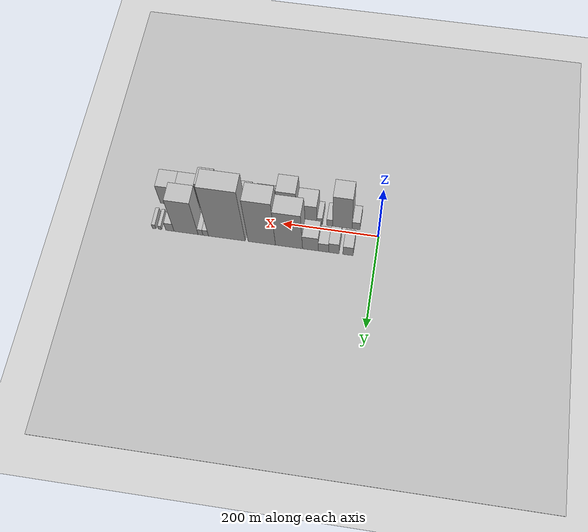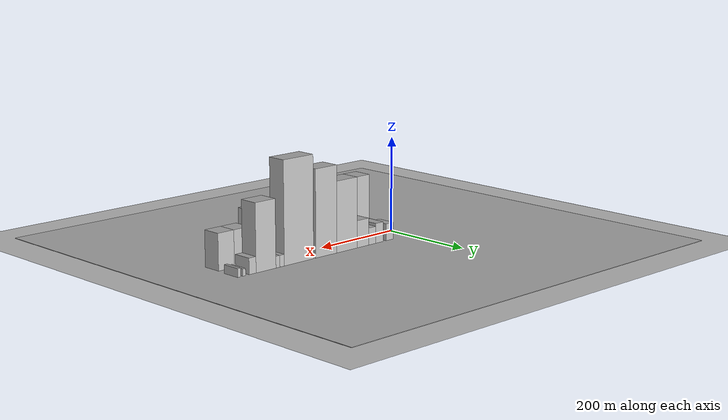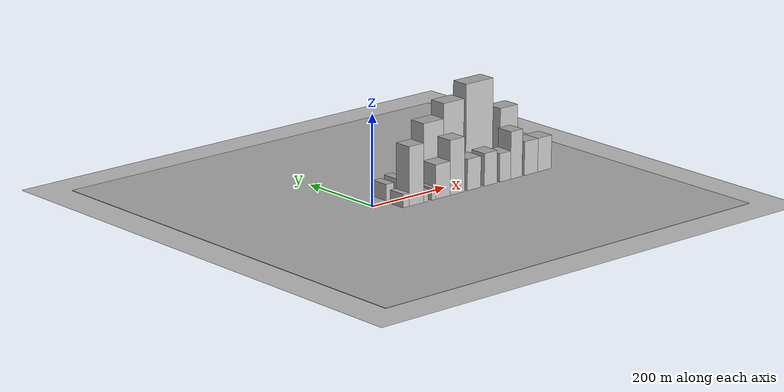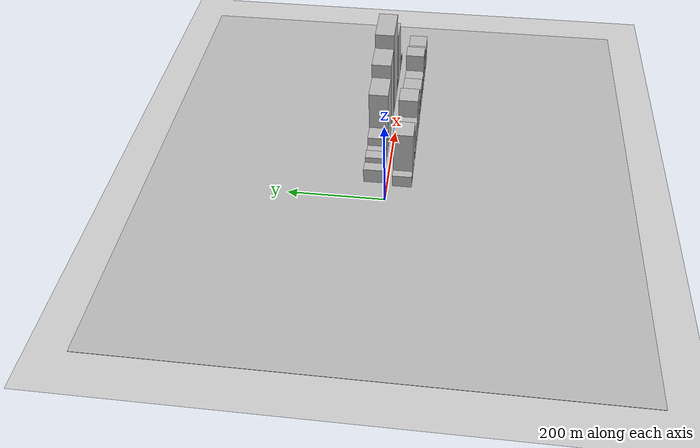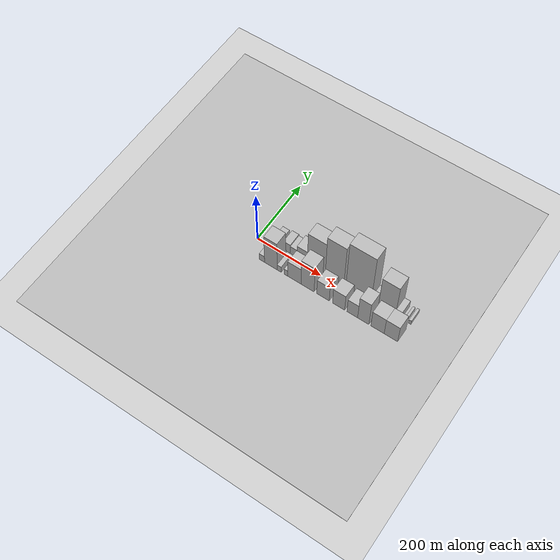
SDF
<?xml version="1.0" encoding="utf-8"?>

<sdf version="1.6">

   <world name="default">

      <gui fullscreen="0">

         <camera name="user_camera">

            <pose>-15 0 4.57585 0 0 0</pose>

            <view_controller>orbit</view_controller>

         </camera>

      </gui>

      <scene>

         <sky>

           <clouds>

             <speed>12</speed>

           </clouds>

         </sky>

         <ambient>0.4 0.4 0.4 1</ambient>

         <background>0.7 0.7 0.7 1</background>

         <shadows>1</shadows>

      </scene>

      <gravity>0 0 -9.8066</gravity>

      <magnetic_field>6e-06 2.3e-05 -4.2e-05</magnetic_field>

      <physics default="0" name="default_physics" type="ode">

         <ode>

            <solver>

               <type>quick</type>

               <iters>10</iters>

               <sor>1.0</sor>

               <use_dynamic_moi_rescaling>0</use_dynamic_moi_rescaling>

            </solver>

            <constraints>

               <cfm>0</cfm>

               <erp>0.2</erp>

               <contact_max_correcting_vel>100</contact_max_correcting_vel>

               <contact_surface_layer>0.001</contact_surface_layer>

            </constraints>

         </ode>

         <max_step_size>0.004</max_step_size>

         <real_time_factor>1</real_time_factor>

         <real_time_update_rate>250</real_time_update_rate>

      </physics>

      <light name="sun" type="directional">

         <cast_shadows>1</cast_shadows>

         <pose>0 0 10 0 0 0</pose>

         <diffuse>0.8 0.8 0.8 1</diffuse>

         <specular>0.2 0.2 0.2 1</specular>

         <attenuation>

            <range>1000</range>

            <constant>0.9</constant>

            <linear>0.01</linear>

            <quadratic>0.001</quadratic>

         </attenuation>

         <direction>-0.5 0.1 -0.9</direction>

      </light>

      <include>

         <name>ground_plane_1</name>

         <uri>model://HANNAS_ground_plane</uri>

         <pose>0 0 0  0 0 0</pose>

      </include>

      <include>

         <name>ground_plane_2</name>

         <uri>model://HANNAS_ground_plane</uri>

         <pose>100 0 0  0 0 0</pose>

      </include>

      <model name="building_1">

         <static>1</static>

         <pose frame="">56.5147 30.0000 0 0.000000 0.000000 1.570796</pose>

         <link name="link">

            <pose frame="">0 0 18.00 0 0 0</pose>

            <collision name="collision">

               <geometry>

                  <box>

                     <size>40.0000 21.0294 36.0000</size>

                  </box>

               </geometry>

               <max_contacts>10</max_contacts>

               <surface>

                  <contact>

                     <ode/>

                  </contact>

                  <bounce/>

                  <friction>

                     <torsional>

                        <ode/>

                     </torsional>

                     <ode/>

                  </friction>

               </surface>

            </collision>

            <visual name="visual">

               <cast_shadows>0</cast_shadows>

               <geometry>

                  <box>

                     <size>40.0000 21.0294 36.0000</size>

                  </box>

               </geometry>

               <material>

                  <script>

                     <uri>model://HANNAS_wall/materials/scripts</uri>

                     <uri>model://HANNAS_wall/materials/textures</uri>

                     <name>vrc/HANNAS_wall</name>

                  </script>

               </material>

            </visual>

            <self_collide>0</self_collide>

            <enable_wind>0</enable_wind>

            <kinematic>0</kinematic>

         </link>

      </model>

      <model name="building_2">

         <static>1</static>

         <pose frame="">85.8096 30.0000 0 0.000000 0.000000 1.570796</pose>

         <link name="link">

            <pose frame="">0 0 21.00 0 0 0</pose>

            <collision name="collision">

               <geometry>

                  <box>

                     <size>40.0000 21.5605 42.0000</size>

                  </box>

               </geometry>

               <max_contacts>10</max_contacts>

               <surface>

                  <contact>

                     <ode/>

                  </contact>

                  <bounce/>

                  <friction>

                     <torsional>

                        <ode/>

                     </torsional>

                     <ode/>

                  </friction>

               </surface>

            </collision>

            <visual name="visual">

               <cast_shadows>0</cast_shadows>

               <geometry>

                  <box>

                     <size>40.0000 21.5605 42.0000</size>

                  </box>

               </geometry>

               <material>

                  <script>

                     <uri>model://HANNAS_wall/materials/scripts</uri>

                     <uri>model://HANNAS_wall/materials/textures</uri>

                     <name>vrc/HANNAS_wall</name>

                  </script>

               </material>

            </visual>

            <self_collide>0</self_collide>

            <enable_wind>0</enable_wind>

            <kinematic>0</kinematic>

         </link>

      </model>

      <model name="building_3">

         <static>1</static>

         <pose frame="">107.0589 30.0000 0 0.000000 0.000000 1.570796</pose>

         <link name="link">

            <pose frame="">0 0 18.00 0 0 0</pose>

            <collision name="collision">

               <geometry>

                  <box>

                     <size>40.0000 20.9381 36.0000</size>

                  </box>

               </geometry>

               <max_contacts>10</max_contacts>

               <surface>

                  <contact>

                     <ode/>

                  </contact>

                  <bounce/>

                  <friction>

                     <torsional>

                        <ode/>

                     </torsional>

                     <ode/>

                  </friction>

               </surface>

            </collision>

            <visual name="visual">

               <cast_shadows>0</cast_shadows>

               <geometry>

                  <box>

                     <size>40.0000 20.9381 36.0000</size>

                  </box>

               </geometry>

               <material>

                  <script>

                     <uri>model://HANNAS_wall/materials/scripts</uri>

                     <uri>model://HANNAS_wall/materials/textures</uri>

                     <name>vrc/HANNAS_wall</name>

                  </script>

               </material>

            </visual>

            <self_collide>0</self_collide>

            <enable_wind>0</enable_wind>

            <kinematic>0</kinematic>

         </link>

      </model>

      <model name="building_4">

         <static>1</static>

         <pose frame="">133.8735 30.0000 0 0.000000 0.000000 1.570796</pose>

         <link name="link">

            <pose frame="">0 0 28.50 0 0 0</pose>

            <collision name="collision">

               <geometry>

                  <box>

                     <size>40.0000 32.6911 57.0000</size>

                  </box>

               </geometry>

               <max_contacts>10</max_contacts>

               <surface>

                  <contact>

                     <ode/>

                  </contact>

                  <bounce/>

                  <friction>

                     <torsional>

                        <ode/>

                     </torsional>

                     <ode/>

                  </friction>

               </surface>

            </collision>

            <visual name="visual">

               <cast_shadows>0</cast_shadows>

               <geometry>

                  <box>

                     <size>40.0000 32.6911 57.0000</size>

                  </box>

               </geometry>

               <material>

                  <script>

                     <uri>model://HANNAS_wall/materials/scripts</uri>

                     <uri>model://HANNAS_wall/materials/textures</uri>

                     <name>vrc/HANNAS_wall</name>

                  </script>

               </material>

            </visual>

            <self_collide>0</self_collide>

            <enable_wind>0</enable_wind>

            <kinematic>0</kinematic>

         </link>

      </model>

      <model name="building_5">

         <static>1</static>

         <pose frame="">178.2053 30.0000 0 0.000000 0.000000 1.570796</pose>

         <link name="link">

            <pose frame="">0 0 73.50 0 0 0</pose>

            <collision name="collision">

               <geometry>

                  <box>

                     <size>40.0000 55.9724 147.0000</size>

                  </box>

               </geometry>

               <max_contacts>10</max_contacts>

               <surface>

                  <contact>

                     <ode/>

                  </contact>

                  <bounce/>

                  <friction>

                     <torsional>

                        <ode/>

                     </torsional>

                     <ode/>

                  </friction>

               </surface>

            </collision>

            <visual name="visual">

               <cast_shadows>0</cast_shadows>

               <geometry>

                  <box>

                     <size>40.0000 55.9724 147.0000</size>

                  </box>

               </geometry>

               <material>

                  <script>

                     <uri>model://HANNAS_wall/materials/scripts</uri>

                     <uri>model://HANNAS_wall/materials/textures</uri>

                     <name>vrc/HANNAS_wall</name>

                  </script>

               </material>

            </visual>

            <self_collide>0</self_collide>

            <enable_wind>0</enable_wind>

            <kinematic>0</kinematic>

         </link>

      </model>

      <model name="building_6">

         <static>1</static>

         <pose frame="">234.6536 30.0000 0 0.000000 0.000000 1.570796</pose>

         <link name="link">

            <pose frame="">0 0 90.00 0 0 0</pose>

            <collision name="collision">

               <geometry>

                  <box>

                     <size>40.0000 56.9243 180.0000</size>

                  </box>

               </geometry>

               <max_contacts>10</max_contacts>

               <surface>

                  <contact>

                     <ode/>

                  </contact>

                  <bounce/>

                  <friction>

                     <torsional>

                        <ode/>

                     </torsional>

                     <ode/>

                  </friction>

               </surface>

            </collision>

            <visual name="visual">

               <cast_shadows>0</cast_shadows>

               <geometry>

                  <box>

                     <size>40.0000 56.9243 180.0000</size>

                  </box>

               </geometry>

               <material>

                  <script>

                     <uri>model://HANNAS_wall/materials/scripts</uri>

                     <uri>model://HANNAS_wall/materials/textures</uri>

                     <name>vrc/HANNAS_wall</name>

                  </script>

               </material>

            </visual>

            <self_collide>0</self_collide>

            <enable_wind>0</enable_wind>

            <kinematic>0</kinematic>

         </link>

      </model>

      <model name="building_7">

         <static>1</static>

         <pose frame="">307.6119 30.0000 0 0.000000 0.000000 1.570796</pose>

         <link name="link">

            <pose frame="">0 0 105.00 0 0 0</pose>

            <collision name="collision">

               <geometry>

                  <box>

                     <size>40.0000 76.9921 210.0000</size>

                  </box>

               </geometry>

               <max_contacts>10</max_contacts>

               <surface>

                  <contact>

                     <ode/>

                  </contact>

                  <bounce/>

                  <friction>

                     <torsional>

                        <ode/>

                     </torsional>

                     <ode/>

                  </friction>

               </surface>

            </collision>

            <visual name="visual">

               <cast_shadows>0</cast_shadows>

               <geometry>

                  <box>

                     <size>40.0000 76.9921 210.0000</size>

                  </box>

               </geometry>

               <material>

                  <script>

                     <uri>model://HANNAS_wall/materials/scripts</uri>

                     <uri>model://HANNAS_wall/materials/textures</uri>

                     <name>vrc/HANNAS_wall</name>

                  </script>

               </material>

            </visual>

            <self_collide>0</self_collide>

            <enable_wind>0</enable_wind>

            <kinematic>0</kinematic>

         </link>

      </model>

      <model name="building_8">

         <static>1</static>

         <pose frame="">351.8058 30.0000 0 0.000000 0.000000 1.570796</pose>

         <link name="link">

            <pose frame="">0 0 12.00 0 0 0</pose>

            <collision name="collision">

               <geometry>

                  <box>

                     <size>40.0000 11.3957 24.0000</size>

                  </box>

               </geometry>

               <max_contacts>10</max_contacts>

               <surface>

                  <contact>

                     <ode/>

                  </contact>

                  <bounce/>

                  <friction>

                     <torsional>

                        <ode/>

                     </torsional>

                     <ode/>

                  </friction>

               </surface>

            </collision>

            <visual name="visual">

               <cast_shadows>0</cast_shadows>

               <geometry>

                  <box>

                     <size>40.0000 11.3957 24.0000</size>

                  </box>

               </geometry>

               <material>

                  <script>

                     <uri>model://HANNAS_wall/materials/scripts</uri>

                     <uri>model://HANNAS_wall/materials/textures</uri>

                     <name>vrc/HANNAS_wall</name>

                  </script>

               </material>

            </visual>

            <self_collide>0</self_collide>

            <enable_wind>0</enable_wind>

            <kinematic>0</kinematic>

         </link>

      </model>

      <model name="building_9">

         <static>1</static>

         <pose frame="">362.6047 30.0000 0 0.000000 0.000000 1.570796</pose>

         <link name="link">

            <pose frame="">0 0 12.00 0 0 0</pose>

            <collision name="collision">

               <geometry>

                  <box>

                     <size>40.0000 10.2021 24.0000</size>

                  </box>

               </geometry>

               <max_contacts>10</max_contacts>

               <surface>

                  <contact>

                     <ode/>

                  </contact>

                  <bounce/>

                  <friction>

                     <torsional>

                        <ode/>

                     </torsional>

                     <ode/>

                  </friction>

               </surface>

            </collision>

            <visual name="visual">

               <cast_shadows>0</cast_shadows>

               <geometry>

                  <box>

                     <size>40.0000 10.2021 24.0000</size>

                  </box>

               </geometry>

               <material>

                  <script>

                     <uri>model://HANNAS_wall/materials/scripts</uri>

                     <uri>model://HANNAS_wall/materials/textures</uri>

                     <name>vrc/HANNAS_wall</name>

                  </script>

               </material>

            </visual>

            <self_collide>0</self_collide>

            <enable_wind>0</enable_wind>

            <kinematic>0</kinematic>

         </link>

      </model>

      <model name="building_10">

         <static>1</static>

         <pose frame="">392.9065 30.0000 0 0.000000 0.000000 1.570796</pose>

         <link name="link">

            <pose frame="">0 0 69.00 0 0 0</pose>

            <collision name="collision">

               <geometry>

                  <box>

                     <size>40.0000 50.4016 138.0000</size>

                  </box>

               </geometry>

               <max_contacts>10</max_contacts>

               <surface>

                  <contact>

                     <ode/>

                  </contact>

                  <bounce/>

                  <friction>

                     <torsional>

                        <ode/>

                     </torsional>

                     <ode/>

                  </friction>

               </surface>

            </collision>

            <visual name="visual">

               <cast_shadows>0</cast_shadows>

               <geometry>

                  <box>

                     <size>40.0000 50.4016 138.0000</size>

                  </box>

               </geometry>

               <material>

                  <script>

                     <uri>model://HANNAS_wall/materials/scripts</uri>

                     <uri>model://HANNAS_wall/materials/textures</uri>

                     <name>vrc/HANNAS_wall</name>

                  </script>

               </material>

            </visual>

            <self_collide>0</self_collide>

            <enable_wind>0</enable_wind>

            <kinematic>0</kinematic>

         </link>

      </model>

      <model name="building_11">

         <static>1</static>

         <pose frame="">426.7746 30.0000 0 0.000000 0.000000 1.570796</pose>

         <link name="link">

            <pose frame="">0 0 16.50 0 0 0</pose>

            <collision name="collision">

               <geometry>

                  <box>

                     <size>40.0000 17.3346 33.0000</size>

                  </box>

               </geometry>

               <max_contacts>10</max_contacts>

               <surface>

                  <contact>

                     <ode/>

                  </contact>

                  <bounce/>

                  <friction>

                     <torsional>

                        <ode/>

                     </torsional>

                     <ode/>

                  </friction>

               </surface>

            </collision>

            <visual name="visual">

               <cast_shadows>0</cast_shadows>

               <geometry>

                  <box>

                     <size>40.0000 17.3346 33.0000</size>

                  </box>

               </geometry>

               <material>

                  <script>

                     <uri>model://HANNAS_wall/materials/scripts</uri>

                     <uri>model://HANNAS_wall/materials/textures</uri>

                     <name>vrc/HANNAS_wall</name>

                  </script>

               </material>

            </visual>

            <self_collide>0</self_collide>

            <enable_wind>0</enable_wind>

            <kinematic>0</kinematic>

         </link>

      </model>

      <model name="building_12">

         <static>1</static>

         <pose frame="">447.8353 30.0000 0 0.000000 0.000000 1.570796</pose>

         <link name="link">

            <pose frame="">0 0 7.50 0 0 0</pose>

            <collision name="collision">

               <geometry>

                  <box>

                     <size>40.0000 6.7868 15.0000</size>

                  </box>

               </geometry>

               <max_contacts>10</max_contacts>

               <surface>

                  <contact>

                     <ode/>

                  </contact>

                  <bounce/>

                  <friction>

                     <torsional>

                        <ode/>

                     </torsional>

                     <ode/>

                  </friction>

               </surface>

            </collision>

            <visual name="visual">

               <cast_shadows>0</cast_shadows>

               <geometry>

                  <box>

                     <size>40.0000 6.7868 15.0000</size>

                  </box>

               </geometry>

               <material>

                  <script>

                     <uri>model://HANNAS_wall/materials/scripts</uri>

                     <uri>model://HANNAS_wall/materials/textures</uri>

                     <name>vrc/HANNAS_wall</name>

                  </script>

               </material>

            </visual>

            <self_collide>0</self_collide>

            <enable_wind>0</enable_wind>

            <kinematic>0</kinematic>

         </link>

      </model>

      <model name="building_13">

         <static>1</static>

         <pose frame="">459.9971 30.0000 0 0.000000 0.000000 1.570796</pose>

         <link name="link">

            <pose frame="">0 0 9.00 0 0 0</pose>

            <collision name="collision">

               <geometry>

                  <box>

                     <size>40.0000 7.5367 18.0000</size>

                  </box>

               </geometry>

               <max_contacts>10</max_contacts>

               <surface>

                  <contact>

                     <ode/>

                  </contact>

                  <bounce/>

                  <friction>

                     <torsional>

                        <ode/>

                     </torsional>

                     <ode/>

                  </friction>

               </surface>

            </collision>

            <visual name="visual">

               <cast_shadows>0</cast_shadows>

               <geometry>

                  <box>

                     <size>40.0000 7.5367 18.0000</size>

                  </box>

               </geometry>

               <material>

                  <script>

                     <uri>model://HANNAS_wall/materials/scripts</uri>

                     <uri>model://HANNAS_wall/materials/textures</uri>

                     <name>vrc/HANNAS_wall</name>

                  </script>

               </material>

            </visual>

            <self_collide>0</self_collide>

            <enable_wind>0</enable_wind>

            <kinematic>0</kinematic>

         </link>

      </model>

      <model name="building_14">

         <static>1</static>

         <pose frame="">48.2404 -30.0000 0 0.000000 0.000000 1.570796</pose>

         <link name="link">

            <pose frame="">0 0 15.00 0 0 0</pose>

            <collision name="collision">

               <geometry>

                  <box>

                     <size>40.0000 16.4807 30.0000</size>

                  </box>

               </geometry>

               <max_contacts>10</max_contacts>

               <surface>

                  <contact>

                     <ode/>

                  </contact>

                  <bounce/>

                  <friction>

                     <torsional>

                        <ode/>

                     </torsional>

                     <ode/>

                  </friction>

               </surface>

            </collision>

            <visual name="visual">

               <cast_shadows>0</cast_shadows>

               <geometry>

                  <box>

                     <size>40.0000 16.4807 30.0000</size>

                  </box>

               </geometry>

               <material>

                  <script>

                     <uri>model://HANNAS_wall/materials/scripts</uri>

                     <uri>model://HANNAS_wall/materials/textures</uri>

                     <name>vrc/HANNAS_wall</name>

                  </script>

               </material>

            </visual>

            <self_collide>0</self_collide>

            <enable_wind>0</enable_wind>

            <kinematic>0</kinematic>

         </link>

      </model>

      <model name="building_15">

         <static>1</static>

         <pose frame="">76.5183 -30.0000 0 0.000000 0.000000 1.570796</pose>

         <link name="link">

            <pose frame="">0 0 64.50 0 0 0</pose>

            <collision name="collision">

               <geometry>

                  <box>

                     <size>40.0000 40.0751 129.0000</size>

                  </box>

               </geometry>

               <max_contacts>10</max_contacts>

               <surface>

                  <contact>

                     <ode/>

                  </contact>

                  <bounce/>

                  <friction>

                     <torsional>

                        <ode/>

                     </torsional>

                     <ode/>

                  </friction>

               </surface>

            </collision>

            <visual name="visual">

               <cast_shadows>0</cast_shadows>

               <geometry>

                  <box>

                     <size>40.0000 40.0751 129.0000</size>

                  </box>

               </geometry>

               <material>

                  <script>

                     <uri>model://HANNAS_wall/materials/scripts</uri>

                     <uri>model://HANNAS_wall/materials/textures</uri>

                     <name>vrc/HANNAS_wall</name>

                  </script>

               </material>

            </visual>

            <self_collide>0</self_collide>

            <enable_wind>0</enable_wind>

            <kinematic>0</kinematic>

         </link>

      </model>

      <model name="building_16">

         <static>1</static>

         <pose frame="">102.9576 -30.0000 0 0.000000 0.000000 1.570796</pose>

         <link name="link">

            <pose frame="">0 0 13.50 0 0 0</pose>

            <collision name="collision">

               <geometry>

                  <box>

                     <size>40.0000 12.8036 27.0000</size>

                  </box>

               </geometry>

               <max_contacts>10</max_contacts>

               <surface>

                  <contact>

                     <ode/>

                  </contact>

                  <bounce/>

                  <friction>

                     <torsional>

                        <ode/>

                     </torsional>

                     <ode/>

                  </friction>

               </surface>

            </collision>

            <visual name="visual">

               <cast_shadows>0</cast_shadows>

               <geometry>

                  <box>

                     <size>40.0000 12.8036 27.0000</size>

                  </box>

               </geometry>

               <material>

                  <script>

                     <uri>model://HANNAS_wall/materials/scripts</uri>

                     <uri>model://HANNAS_wall/materials/textures</uri>

                     <name>vrc/HANNAS_wall</name>

                  </script>

               </material>

            </visual>

            <self_collide>0</self_collide>

            <enable_wind>0</enable_wind>

            <kinematic>0</kinematic>

         </link>

      </model>

      <model name="building_17">

         <static>1</static>

         <pose frame="">123.9845 -30.0000 0 0.000000 0.000000 1.570796</pose>

         <link name="link">

            <pose frame="">0 0 13.50 0 0 0</pose>

            <collision name="collision">

               <geometry>

                  <box>

                     <size>40.0000 11.2503 27.0000</size>

                  </box>

               </geometry>

               <max_contacts>10</max_contacts>

               <surface>

                  <contact>

                     <ode/>

                  </contact>

                  <bounce/>

                  <friction>

                     <torsional>

                        <ode/>

                     </torsional>

                     <ode/>

                  </friction>

               </surface>

            </collision>

            <visual name="visual">

               <cast_shadows>0</cast_shadows>

               <geometry>

                  <box>

                     <size>40.0000 11.2503 27.0000</size>

                  </box>

               </geometry>

               <material>

                  <script>

                     <uri>model://HANNAS_wall/materials/scripts</uri>

                     <uri>model://HANNAS_wall/materials/textures</uri>

                     <name>vrc/HANNAS_wall</name>

                  </script>

               </material>

            </visual>

            <self_collide>0</self_collide>

            <enable_wind>0</enable_wind>

            <kinematic>0</kinematic>

         </link>

      </model>

      <model name="building_18">

         <static>1</static>

         <pose frame="">150.2553 -30.0000 0 0.000000 0.000000 1.570796</pose>

         <link name="link">

            <pose frame="">0 0 37.50 0 0 0</pose>

            <collision name="collision">

               <geometry>

                  <box>

                     <size>40.0000 41.2912 75.0000</size>

                  </box>

               </geometry>

               <max_contacts>10</max_contacts>

               <surface>

                  <contact>

                     <ode/>

                  </contact>

                  <bounce/>

                  <friction>

                     <torsional>

                        <ode/>

                     </torsional>

                     <ode/>

                  </friction>

               </surface>

            </collision>

            <visual name="visual">

               <cast_shadows>0</cast_shadows>

               <geometry>

                  <box>

                     <size>40.0000 41.2912 75.0000</size>

                  </box>

               </geometry>

               <material>

                  <script>

                     <uri>model://HANNAS_wall/materials/scripts</uri>

                     <uri>model://HANNAS_wall/materials/textures</uri>

                     <name>vrc/HANNAS_wall</name>

                  </script>

               </material>

            </visual>

            <self_collide>0</self_collide>

            <enable_wind>0</enable_wind>

            <kinematic>0</kinematic>

         </link>

      </model>

      <model name="building_19">

         <static>1</static>

         <pose frame="">191.0129 -30.0000 0 0.000000 0.000000 1.570796</pose>

         <link name="link">

            <pose frame="">0 0 60.00 0 0 0</pose>

            <collision name="collision">

               <geometry>

                  <box>

                     <size>40.0000 40.2239 120.0000</size>

                  </box>

               </geometry>

               <max_contacts>10</max_contacts>

               <surface>

                  <contact>

                     <ode/>

                  </contact>

                  <bounce/>

                  <friction>

                     <torsional>

                        <ode/>

                     </torsional>

                     <ode/>

                  </friction>

               </surface>

            </collision>

            <visual name="visual">

               <cast_shadows>0</cast_shadows>

               <geometry>

                  <box>

                     <size>40.0000 40.2239 120.0000</size>

                  </box>

               </geometry>

               <material>

                  <script>

                     <uri>model://HANNAS_wall/materials/scripts</uri>

                     <uri>model://HANNAS_wall/materials/textures</uri>

                     <name>vrc/HANNAS_wall</name>

                  </script>

               </material>

            </visual>

            <self_collide>0</self_collide>

            <enable_wind>0</enable_wind>

            <kinematic>0</kinematic>

         </link>

      </model>

      <model name="building_20">

         <static>1</static>

         <pose frame="">238.2683 -30.0000 0 0.000000 0.000000 1.570796</pose>

         <link name="link">

            <pose frame="">0 0 34.50 0 0 0</pose>

            <collision name="collision">

               <geometry>

                  <box>

                     <size>40.0000 38.2868 69.0000</size>

                  </box>

               </geometry>

               <max_contacts>10</max_contacts>

               <surface>

                  <contact>

                     <ode/>

                  </contact>

                  <bounce/>

                  <friction>

                     <torsional>

                        <ode/>

                     </torsional>

                     <ode/>

                  </friction>

               </surface>

            </collision>

            <visual name="visual">

               <cast_shadows>0</cast_shadows>

               <geometry>

                  <box>

                     <size>40.0000 38.2868 69.0000</size>

                  </box>

               </geometry>

               <material>

                  <script>

                     <uri>model://HANNAS_wall/materials/scripts</uri>

                     <uri>model://HANNAS_wall/materials/textures</uri>

                     <name>vrc/HANNAS_wall</name>

                  </script>

               </material>

            </visual>

            <self_collide>0</self_collide>

            <enable_wind>0</enable_wind>

            <kinematic>0</kinematic>

         </link>

      </model>

      <model name="building_21">

         <static>1</static>

         <pose frame="">285.7348 -30.0000 0 0.000000 0.000000 1.570796</pose>

         <link name="link">

            <pose frame="">0 0 36.00 0 0 0</pose>

            <collision name="collision">

               <geometry>

                  <box>

                     <size>40.0000 36.6463 72.0000</size>

                  </box>

               </geometry>

               <max_contacts>10</max_contacts>

               <surface>

                  <contact>

                     <ode/>

                  </contact>

                  <bounce/>

                  <friction>

                     <torsional>

                        <ode/>

                     </torsional>

                     <ode/>

                  </friction>

               </surface>

            </collision>

            <visual name="visual">

               <cast_shadows>0</cast_shadows>

               <geometry>

                  <box>

                     <size>40.0000 36.6463 72.0000</size>

                  </box>

               </geometry>

               <material>

                  <script>

                     <uri>model://HANNAS_wall/materials/scripts</uri>

                     <uri>model://HANNAS_wall/materials/textures</uri>

                     <name>vrc/HANNAS_wall</name>

                  </script>

               </material>

            </visual>

            <self_collide>0</self_collide>

            <enable_wind>0</enable_wind>

            <kinematic>0</kinematic>

         </link>

      </model>

      <model name="building_22">

         <static>1</static>

         <pose frame="">326.9883 -30.0000 0 0.000000 0.000000 1.570796</pose>

         <link name="link">

            <pose frame="">0 0 31.50 0 0 0</pose>

            <collision name="collision">

               <geometry>

                  <box>

                     <size>40.0000 31.8606 63.0000</size>

                  </box>

               </geometry>

               <max_contacts>10</max_contacts>

               <surface>

                  <contact>

                     <ode/>

                  </contact>

                  <bounce/>

                  <friction>

                     <torsional>

                        <ode/>

                     </torsional>

                     <ode/>

                  </friction>

               </surface>

            </collision>

            <visual name="visual">

               <cast_shadows>0</cast_shadows>

               <geometry>

                  <box>

                     <size>40.0000 31.8606 63.0000</size>

                  </box>

               </geometry>

               <material>

                  <script>

                     <uri>model://HANNAS_wall/materials/scripts</uri>

                     <uri>model://HANNAS_wall/materials/textures</uri>

                     <name>vrc/HANNAS_wall</name>

                  </script>

               </material>

            </visual>

            <self_collide>0</self_collide>

            <enable_wind>0</enable_wind>

            <kinematic>0</kinematic>

         </link>

      </model>

      <model name="building_23">

         <static>1</static>

         <pose frame="">359.6305 -30.0000 0 0.000000 0.000000 1.570796</pose>

         <link name="link">

            <pose frame="">0 0 52.50 0 0 0</pose>

            <collision name="collision">

               <geometry>

                  <box>

                     <size>40.0000 33.4239 105.0000</size>

                  </box>

               </geometry>

               <max_contacts>10</max_contacts>

               <surface>

                  <contact>

                     <ode/>

                  </contact>

                  <bounce/>

                  <friction>

                     <torsional>

                        <ode/>

                     </torsional>

                     <ode/>

                  </friction>

               </surface>

            </collision>

            <visual name="visual">

               <cast_shadows>0</cast_shadows>

               <geometry>

                  <box>

                     <size>40.0000 33.4239 105.0000</size>

                  </box>

               </geometry>

               <material>

                  <script>

                     <uri>model://HANNAS_wall/materials/scripts</uri>

                     <uri>model://HANNAS_wall/materials/textures</uri>

                     <name>vrc/HANNAS_wall</name>

                  </script>

               </material>

            </visual>

            <self_collide>0</self_collide>

            <enable_wind>0</enable_wind>

            <kinematic>0</kinematic>

         </link>

      </model>

      <model name="building_24">

         <static>1</static>

         <pose frame="">401.9308 -30.0000 0 0.000000 0.000000 1.570796</pose>

         <link name="link">

            <pose frame="">0 0 37.50 0 0 0</pose>

            <collision name="collision">

               <geometry>

                  <box>

                     <size>40.0000 39.1766 75.0000</size>

                  </box>

               </geometry>

               <max_contacts>10</max_contacts>

               <surface>

                  <contact>

                     <ode/>

                  </contact>

                  <bounce/>

                  <friction>

                     <torsional>

                        <ode/>

                     </torsional>

                     <ode/>

                  </friction>

               </surface>

            </collision>

            <visual name="visual">

               <cast_shadows>0</cast_shadows>

               <geometry>

                  <box>

                     <size>40.0000 39.1766 75.0000</size>

                  </box>

               </geometry>

               <material>

                  <script>

                     <uri>model://HANNAS_wall/materials/scripts</uri>

                     <uri>model://HANNAS_wall/materials/textures</uri>

                     <name>vrc/HANNAS_wall</name>

                  </script>

               </material>

            </visual>

            <self_collide>0</self_collide>

            <enable_wind>0</enable_wind>

            <kinematic>0</kinematic>

         </link>

      </model>

      <model name="building_25">

         <static>1</static>

         <pose frame="">441.2430 -30.0000 0 0.000000 0.000000 1.570796</pose>

         <link name="link">

            <pose frame="">0 0 37.50 0 0 0</pose>

            <collision name="collision">

               <geometry>

                  <box>

                     <size>40.0000 39.4479 75.0000</size>

                  </box>

               </geometry>

               <max_contacts>10</max_contacts>

               <surface>

                  <contact>

                     <ode/>

                  </contact>

                  <bounce/>

                  <friction>

                     <torsional>

                        <ode/>

                     </torsional>

                     <ode/>

                  </friction>

               </surface>

            </collision>

            <visual name="visual">

               <cast_shadows>0</cast_shadows>

               <geometry>

                  <box>

                     <size>40.0000 39.4479 75.0000</size>

                  </box>

               </geometry>

               <material>

                  <script>

                     <uri>model://HANNAS_wall/materials/scripts</uri>

                     <uri>model://HANNAS_wall/materials/textures</uri>

                     <name>vrc/HANNAS_wall</name>

                  </script>

               </material>

            </visual>

            <self_collide>0</self_collide>

            <enable_wind>0</enable_wind>

            <kinematic>0</kinematic>

         </link>

      </model>

   </world>

</sdf>

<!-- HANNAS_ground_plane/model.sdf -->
<sdf version="1.4">
<model name="HANNAS_ground_plane">
  <static>true</static>
    <link name="link">
      <collision name="collision">
        <geometry>
          <plane>
            <normal>0 0 1</normal>
            <size>1000 1000</size>
          </plane>
        </geometry>
        <surface>
          <friction>
            <ode>
              <mu>100</mu>
              <mu2>50</mu2>
            </ode>
          </friction>
        </surface>
      </collision>
      <visual name="visual">
        <cast_shadows>false</cast_shadows>
        <geometry>
          <plane>
            <normal>0 0 1</normal>
            <size>1000 1000</size>
          </plane>
        </geometry>
        <material>
          <script>
            <uri>model://HANNAS_ground_plane/materials/scripts/HANNAS_ground_plane.material</uri>
	    <uri>model://HANNAS_ground_plane/materials/textures</uri>
            <name>HANNASGroundPlane/Image</name>
          </script>
        </material>
      </visual>
    </link>
  </model>
</sdf>
